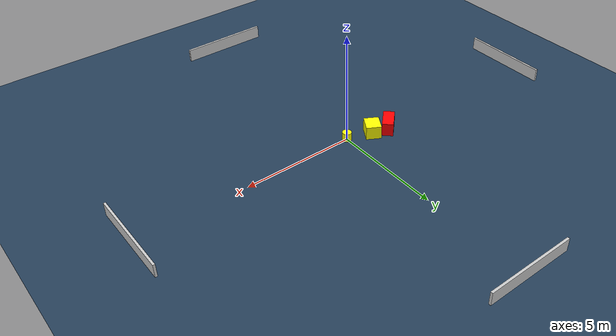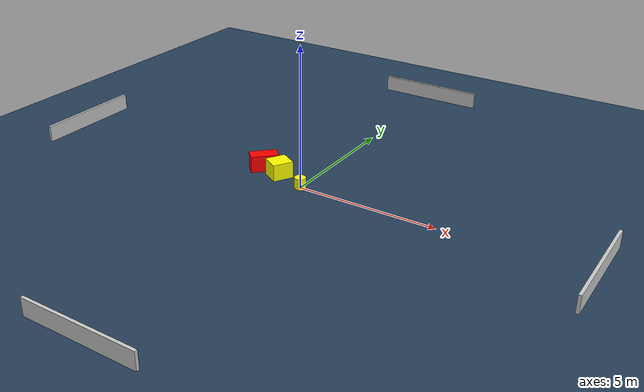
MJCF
<?xml version="1.0" ?>
<mujoco model="generated_environment">
  <option timestep="0.01" integrator="RK4" cone="elliptic"/>
  <default>
    <geom density="1"/>
  </default>
  <asset>
    <texture builtin="gradient" height="3072" name="skybox" rgb1="0.3 0.5 0.7" rgb2="0 0 0" type="skybox" width="512"/>
    <texture builtin="checker" height="300" name="groundplane" rgb1="0.2 0.3 0.4" rgb2="0.1 0.2 0.3" type="2d" width="300"/>
    <material name="groundplane" reflectance="0.2" texrepeat="5 5" texture="groundplane"/>
  </asset>
  <worldbody>
    <light dir="0 0 -1" directional="true" pos="0 0 1.5"/>
    <geom condim="3" friction="0.5 0.005 0.001" material="groundplane" name="floor" pos="0 0 0" size="0 0 0.05" type="plane"/>
    <body name="walls">
      <geom name="wall_1" condim="4" pos="-10.0 0.0 0.3" rgba="0.800000011920929 0.800000011920929 0.800000011920929 1.0" size="0.05 2.0 0.3" type="box"/>
      <geom name="wall_2" condim="4" pos="10.0 0.0 0.3" rgba="0.800000011920929 0.800000011920929 0.800000011920929 1.0" size="0.05 2.0 0.3" type="box"/>
      <geom name="wall_3" condim="4" pos="0.0 -10.0 0.3" rgba="0.800000011920929 0.800000011920929 0.800000011920929 1.0" size="2.0 0.05 0.3" type="box"/>
      <geom name="wall_4" condim="4" pos="0.0 10.0 0.3" rgba="0.800000011920929 0.800000011920929 0.800000011920929 1.0" size="2.0 0.05 0.3" type="box"/>
    </body>
    <body name="robot">
      <joint name="joint_x" type="slide" pos="0 0 0" axis="1 0 0"/>
      <joint name="joint_y" type="slide" pos="0 0 0" axis="0 1 0"/>
      <geom name="robot" type="cylinder" pos="0.0 0.0 0.2" size="0.2 0.2 0.0" mass="5.0" friction="1.0 0.005 0.0001" condim="4" rgba="1.0 1.0 0.0 1.0"/>
    </body>
    <body name="obstacle_1_movable">
      <geom name="obstacle_1_movable" condim="4" pos="-1.1152756376357107 0.3674140116932605 0.3" euler="0 0 60.16309296765223" friction="0.0 0.005 0.001" rgba="1.0 1.0 0.0 1.0" size="0.3715226633924422 0.33220475615226386 0.3" type="box" mass="0.1"/>
      <joint type="free"/>
    </body>
    <body name="obstacle_2_static">
      <geom name="obstacle_2_static" condim="4" pos="-1.8835922204992117 0.5281857441199657 0.3" euler="0 0 135.2050858239637" friction="0.0 0.005 0.001" rgba="1.0 0.0 0.0 1.0" size="0.24891349420493974 0.4937458614050829 0.3" type="box"/>
    </body>
  </worldbody>
  <actuator>
    <motor name="actuator_x" joint="joint_x" gear="1" ctrlrange="-1 1"/>
    <motor name="actuator_y" joint="joint_y" gear="1" ctrlrange="-1 1"/>
  </actuator>
</mujoco>
